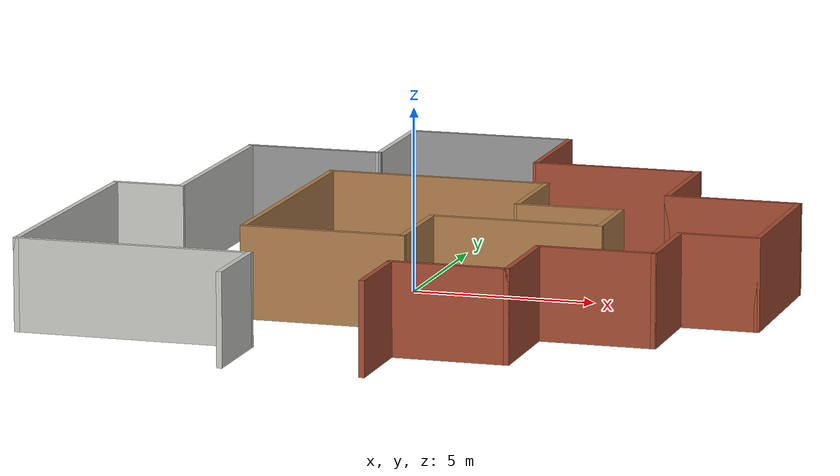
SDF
<?xml version='1.0'?>
<sdf version='1.6'>
  <model name='gazebo_course_3_hard'>
    <pose frame=''>0.742119 -0.304765 0 0 -0 0</pose>
    <link name='Wall_0'>
      <collision name='Wall_0_Collision'>
        <geometry>
          <box>
            <size>2.5 0.15 2.5</size>
          </box>
        </geometry>
        <pose frame=''>0 0 1.25 0 -0 0</pose>
      </collision>
      <visual name='Wall_0_Visual'>
        <pose frame=''>0 0 1.25 0 -0 0</pose>
        <geometry>
          <box>
            <size>2.5 0.15 2.5</size>
          </box>
        </geometry>
        <material>
          <script>
            <uri>file://media/materials/scripts/gazebo.material</uri>
            <name>Gazebo/CeilingTiled</name>
          </script>
          <ambient>1 1 1 1</ambient>
        </material>
        <meta>
          <layer>0</layer>
        </meta>
      </visual>
      <pose frame=''>-2.85212 -8.45023 0 0 -0 1.5708</pose>
    </link>
    <link name='Wall_1'>
      <collision name='Wall_1_Collision'>
        <geometry>
          <box>
            <size>6.5 0.15 2.5</size>
          </box>
        </geometry>
        <pose frame=''>0 0 1.25 0 -0 0</pose>
      </collision>
      <visual name='Wall_1_Visual'>
        <pose frame=''>0 0 1.25 0 -0 0</pose>
        <geometry>
          <box>
            <size>6.5 0.15 2.5</size>
          </box>
        </geometry>
        <material>
          <script>
            <uri>file://media/materials/scripts/gazebo.material</uri>
            <name>Gazebo/CeilingTiled</name>
          </script>
          <ambient>1 1 1 1</ambient>
        </material>
        <meta>
          <layer>0</layer>
        </meta>
      </visual>
      <pose frame=''>-6.02712 -7.27524 0 0 -0 3.14159</pose>
    </link>
    <link name='Wall_10'>
      <collision name='Wall_10_Collision'>
        <geometry>
          <box>
            <size>2.25 0.15 2.5</size>
          </box>
        </geometry>
        <pose frame=''>0 0 1.25 0 -0 0</pose>
      </collision>
      <visual name='Wall_10_Visual'>
        <pose frame=''>0 0 1.25 0 -0 0</pose>
        <geometry>
          <box>
            <size>2.25 0.15 2.5</size>
          </box>
        </geometry>
        <material>
          <script>
            <uri>file://media/materials/scripts/gazebo.material</uri>
            <name>Gazebo/Bricks</name>
          </script>
          <ambient>1 1 1 1</ambient>
        </material>
        <meta>
          <layer>0</layer>
        </meta>
      </visual>
      <pose frame=''>8.15255 -1.77532 0 0 -0 0</pose>
    </link>
    <link name='Wall_11'>
      <collision name='Wall_11_Collision'>
        <geometry>
          <box>
            <size>4.75 0.15 2.5</size>
          </box>
        </geometry>
        <pose frame=''>0 0 1.25 0 -0 0</pose>
      </collision>
      <visual name='Wall_11_Visual'>
        <pose frame=''>0 0 1.25 0 -0 0</pose>
        <geometry>
          <box>
            <size>4.75 0.15 2.5</size>
          </box>
        </geometry>
        <material>
          <script>
            <uri>file://media/materials/scripts/gazebo.material</uri>
            <name>Gazebo/Bricks</name>
          </script>
          <ambient>1 1 1 1</ambient>
        </material>
        <meta>
          <layer>0</layer>
        </meta>
      </visual>
      <pose frame=''>9.20255 0.524681 0 0 -0 1.5708</pose>
    </link>
    <link name='Wall_12'>
      <collision name='Wall_12_Collision'>
        <geometry>
          <box>
            <size>3.75 0.15 2.5</size>
          </box>
        </geometry>
        <pose frame=''>0 0 1.25 0 -0 0</pose>
      </collision>
      <visual name='Wall_12_Visual'>
        <pose frame=''>0 0 1.25 0 -0 0</pose>
        <geometry>
          <box>
            <size>3.75 0.15 2.5</size>
          </box>
        </geometry>
        <material>
          <script>
            <uri>file://media/materials/scripts/gazebo.material</uri>
            <name>Gazebo/Bricks</name>
          </script>
          <ambient>1 1 1 1</ambient>
        </material>
        <meta>
          <layer>0</layer>
        </meta>
      </visual>
      <pose frame=''>7.40255 2.82468 0 0 -0 3.14159</pose>
    </link>
    <link name='Wall_13'>
      <collision name='Wall_13_Collision'>
        <geometry>
          <box>
            <size>3.5 0.15 2.5</size>
          </box>
        </geometry>
        <pose frame=''>0 0 1.25 0 -0 0</pose>
      </collision>
      <visual name='Wall_13_Visual'>
        <pose frame=''>0 0 1.25 0 -0 0</pose>
        <geometry>
          <box>
            <size>3.5 0.15 2.5</size>
          </box>
        </geometry>
        <material>
          <script>
            <uri>file://media/materials/scripts/gazebo.material</uri>
            <name>Gazebo/Bricks</name>
          </script>
          <ambient>1 1 1 1</ambient>
        </material>
        <meta>
          <layer>0</layer>
        </meta>
      </visual>
      <pose frame=''>5.60255 4.49968 0 0 -0 1.5708</pose>
    </link>
    <link name='Wall_17'>
      <collision name='Wall_17_Collision'>
        <geometry>
          <box>
            <size>4.75 0.15 2.5</size>
          </box>
        </geometry>
        <pose frame=''>0 0 1.25 0 -0 0</pose>
      </collision>
      <visual name='Wall_17_Visual'>
        <pose frame=''>0 0 1.25 0 -0 0</pose>
        <geometry>
          <box>
            <size>4.75 0.15 2.5</size>
          </box>
        </geometry>
        <material>
          <script>
            <uri>file://media/materials/scripts/gazebo.material</uri>
            <name>Gazebo/Bricks</name>
          </script>
          <ambient>1 1 1 1</ambient>
        </material>
        <meta>
          <layer>0</layer>
        </meta>
      </visual>
      <pose frame=''>3.30255 6.17468 0 0 -0 3.14159</pose>
    </link>
    <link name='Wall_27'>
      <collision name='Wall_27_Collision'>
        <geometry>
          <box>
            <size>3.9 0.15 2.5</size>
          </box>
        </geometry>
        <pose frame=''>0 0 1.25 0 -0 0</pose>
      </collision>
      <visual name='Wall_27_Visual'>
        <pose frame=''>0 0 1.25 0 -0 0</pose>
        <geometry>
          <box>
            <size>3.9 0.15 2.5</size>
          </box>
        </geometry>
        <material>
          <script>
            <uri>file://media/materials/scripts/gazebo.material</uri>
            <name>Gazebo/Grey</name>
          </script>
          <ambient>1 1 1 1</ambient>
        </material>
        <meta>
          <layer>0</layer>
        </meta>
      </visual>
      <pose frame=''>-5.45312 6.28876 0 0 -0 0</pose>
    </link>
    <link name='Wall_30'>
      <collision name='Wall_30_Collision'>
        <geometry>
          <box>
            <size>3.48595 0.15 2.5</size>
          </box>
        </geometry>
        <pose frame=''>0 0 1.25 0 -0 0</pose>
      </collision>
      <visual name='Wall_30_Visual'>
        <pose frame=''>0 0 1.25 0 -0 0</pose>
        <geometry>
          <box>
            <size>3.48595 0.15 2.5</size>
          </box>
        </geometry>
        <material>
          <script>
            <uri>file://media/materials/scripts/gazebo.material</uri>
            <name>Gazebo/CeilingTiled</name>
          </script>
          <ambient>1 1 1 1</ambient>
        </material>
        <meta>
          <layer>0</layer>
        </meta>
      </visual>
      <pose frame=''>-3.59012 7.95676 0 0 -0 1.57799</pose>
    </link>
    <link name='Wall_31'>
      <collision name='Wall_31_Collision'>
        <geometry>
          <box>
            <size>4.75 0.15 2.5</size>
          </box>
        </geometry>
        <pose frame=''>0 0 1.25 0 -0 0</pose>
      </collision>
      <visual name='Wall_31_Visual'>
        <pose frame=''>0 0 1.25 0 -0 0</pose>
        <geometry>
          <box>
            <size>4.75 0.15 2.5</size>
          </box>
        </geometry>
        <material>
          <script>
            <uri>file://media/materials/scripts/gazebo.material</uri>
            <name>Gazebo/Grey</name>
          </script>
          <ambient>1 1 1 1</ambient>
        </material>
        <meta>
          <layer>0</layer>
        </meta>
      </visual>
      <pose frame=''>-1.30212 9.62477 0 0 -0 0</pose>
    </link>
    <link name='Wall_32'>
      <collision name='Wall_32_Collision'>
        <geometry>
          <box>
            <size>3.60009 0.15 2.5</size>
          </box>
        </geometry>
        <pose frame=''>0 0 1.25 0 -0 0</pose>
      </collision>
      <visual name='Wall_32_Visual'>
        <pose frame=''>0 0 1.25 0 -0 0</pose>
        <geometry>
          <box>
            <size>3.60009 0.15 2.5</size>
          </box>
        </geometry>
        <material>
          <script>
            <uri>file://media/materials/scripts/gazebo.material</uri>
            <name>Gazebo/Bricks</name>
          </script>
          <ambient>1 1 1 1</ambient>
        </material>
        <meta>
          <layer>0</layer>
        </meta>
      </visual>
      <pose frame=''>1.00022 7.89972 0 0 -0 -1.56944</pose>
    </link>
    <link name='Wall_35'>
      <collision name='Wall_35_Collision'>
        <geometry>
          <box>
            <size>7.75 0.15 2.5</size>
          </box>
        </geometry>
        <pose frame=''>0 0 1.25 0 -0 0</pose>
      </collision>
      <visual name='Wall_35_Visual'>
        <pose frame=''>0 0 1.25 0 -0 0</pose>
        <geometry>
          <box>
            <size>7.75 0.15 2.5</size>
          </box>
        </geometry>
        <material>
          <script>
            <uri>file://media/materials/scripts/gazebo.material</uri>
            <name>Gazebo/CeilingTiled</name>
          </script>
          <ambient>1 1 1 1</ambient>
        </material>
        <meta>
          <layer>0</layer>
        </meta>
      </visual>
      <pose frame=''>-9.20212 -3.47524 0 0 -0 1.5708</pose>
    </link>
    <link name='Wall_46'>
      <collision name='Wall_46_Collision'>
        <geometry>
          <box>
            <size>2.02213 0.15 2.5</size>
          </box>
        </geometry>
        <pose frame=''>0 0 1.25 0 -0 0</pose>
      </collision>
      <visual name='Wall_46_Visual'>
        <pose frame=''>0 0 1.25 0 -0 0</pose>
        <geometry>
          <box>
            <size>2.02213 0.15 2.5</size>
          </box>
        </geometry>
        <material>
          <script>
            <uri>file://media/materials/scripts/gazebo.material</uri>
            <name>Gazebo/CeilingTiled</name>
          </script>
          <ambient>1 1 1 1</ambient>
        </material>
        <meta>
          <layer>0</layer>
        </meta>
      </visual>
      <pose frame=''>-8.26624 0.327932 0 0 -0 0.003384</pose>
    </link>
    <link name='Wall_47'>
      <collision name='Wall_47_Collision'>
        <geometry>
          <box>
            <size>6 0.15 2.5</size>
          </box>
        </geometry>
        <pose frame=''>0 0 1.25 0 -0 0</pose>
      </collision>
      <visual name='Wall_47_Visual'>
        <pose frame=''>0 0 1.25 0 -0 0</pose>
        <geometry>
          <box>
            <size>6 0.15 2.5</size>
          </box>
        </geometry>
        <material>
          <script>
            <uri>file://media/materials/scripts/gazebo.material</uri>
            <name>Gazebo/CeilingTiled</name>
          </script>
          <ambient>1 1 1 1</ambient>
        </material>
        <meta>
          <layer>0</layer>
        </meta>
      </visual>
      <pose frame=''>-7.33036 3.25865 0 0 -0 1.5708</pose>
    </link>
    <link name='Wall_5'>
      <collision name='Wall_5_Collision'>
        <geometry>
          <box>
            <size>2.5 0.15 2.5</size>
          </box>
        </geometry>
        <pose frame=''>0 0 1.25 0 -0 0</pose>
      </collision>
      <visual name='Wall_5_Visual'>
        <pose frame=''>0 0 1.25 0 -0 0</pose>
        <geometry>
          <box>
            <size>2.5 0.15 2.5</size>
          </box>
        </geometry>
        <material>
          <script>
            <uri>file://media/materials/scripts/gazebo.material</uri>
            <name>Gazebo/Bricks</name>
          </script>
          <ambient>1 1 1 1</ambient>
        </material>
        <meta>
          <layer>0</layer>
        </meta>
      </visual>
      <pose frame=''>0.902548 -8.40032 0 0 -0 1.5708</pose>
    </link>
    <link name='Wall_54'>
      <collision name='Wall_54_Collision'>
        <geometry>
          <box>
            <size>6.25 0.15 2.5</size>
          </box>
        </geometry>
        <pose frame=''>0 0 1.25 0 -0 0</pose>
      </collision>
      <visual name='Wall_54_Visual'>
        <pose frame=''>0 0 1.25 0 -0 0</pose>
        <geometry>
          <box>
            <size>6.25 0.15 2.5</size>
          </box>
        </geometry>
        <material>
          <script>
            <uri>file://media/materials/scripts/gazebo.material</uri>
            <name>Gazebo/Wood</name>
          </script>
          <ambient>1 1 1 1</ambient>
        </material>
        <meta>
          <layer>0</layer>
        </meta>
      </visual>
      <pose frame=''>-1.01415 3.47448 0 0 -0 0</pose>
    </link>
    <link name='Wall_55'>
      <collision name='Wall_55_Collision'>
        <geometry>
          <box>
            <size>3 0.15 2.5</size>
          </box>
        </geometry>
        <pose frame=''>0 0 1.25 0 -0 0</pose>
      </collision>
      <visual name='Wall_55_Visual'>
        <pose frame=''>0 0 1.25 0 -0 0</pose>
        <geometry>
          <box>
            <size>3 0.15 2.5</size>
          </box>
        </geometry>
        <material>
          <script>
            <uri>file://media/materials/scripts/gazebo.material</uri>
            <name>Gazebo/Wood</name>
          </script>
          <ambient>1 1 1 1</ambient>
        </material>
        <meta>
          <layer>0</layer>
        </meta>
      </visual>
      <pose frame=''>2.03585 2.04948 0 0 -0 -1.5708</pose>
    </link>
    <link name='Wall_56'>
      <collision name='Wall_56_Collision'>
        <geometry>
          <box>
            <size>3 0.15 2.5</size>
          </box>
        </geometry>
        <pose frame=''>0 0 1.25 0 -0 0</pose>
      </collision>
      <visual name='Wall_56_Visual'>
        <pose frame=''>0 0 1.25 0 -0 0</pose>
        <geometry>
          <box>
            <size>3 0.15 2.5</size>
          </box>
        </geometry>
        <material>
          <script>
            <uri>file://media/materials/scripts/gazebo.material</uri>
            <name>Gazebo/Wood</name>
          </script>
          <ambient>1 1 1 1</ambient>
        </material>
        <meta>
          <layer>0</layer>
        </meta>
      </visual>
      <pose frame=''>3.46085 0.624483 0 0 -0 0</pose>
    </link>
    <link name='Wall_57'>
      <collision name='Wall_57_Collision'>
        <geometry>
          <box>
            <size>2.25 0.15 2.5</size>
          </box>
        </geometry>
        <pose frame=''>0 0 1.25 0 -0 0</pose>
      </collision>
      <visual name='Wall_57_Visual'>
        <pose frame=''>0 0 1.25 0 -0 0</pose>
        <geometry>
          <box>
            <size>2.25 0.15 2.5</size>
          </box>
        </geometry>
        <material>
          <script>
            <uri>file://media/materials/scripts/gazebo.material</uri>
            <name>Gazebo/Wood</name>
          </script>
          <ambient>1 1 1 1</ambient>
        </material>
        <meta>
          <layer>0</layer>
        </meta>
      </visual>
      <pose frame=''>4.88585 -0.425517 0 0 -0 -1.5708</pose>
    </link>
    <link name='Wall_6'>
      <collision name='Wall_6_Collision'>
        <geometry>
          <box>
            <size>3.25 0.15 2.5</size>
          </box>
        </geometry>
        <pose frame=''>0 0 1.25 0 -0 0</pose>
      </collision>
      <visual name='Wall_6_Visual'>
        <pose frame=''>0 0 1.25 0 -0 0</pose>
        <geometry>
          <box>
            <size>3.25 0.15 2.5</size>
          </box>
        </geometry>
        <material>
          <script>
            <uri>file://media/materials/scripts/gazebo.material</uri>
            <name>Gazebo/Bricks</name>
          </script>
          <ambient>1 1 1 1</ambient>
        </material>
        <meta>
          <layer>0</layer>
        </meta>
      </visual>
      <pose frame=''>2.45255 -7.22532 0 0 -0 0</pose>
    </link>
    <link name='Wall_60'>
      <collision name='Wall_60_Collision'>
        <geometry>
          <box>
            <size>4.75 0.15 2.5</size>
          </box>
        </geometry>
        <pose frame=''>0 0 1.25 0 -0 0</pose>
      </collision>
      <visual name='Wall_60_Visual'>
        <pose frame=''>0 0 1.25 0 -0 0</pose>
        <geometry>
          <box>
            <size>4.75 0.15 2.5</size>
          </box>
        </geometry>
        <material>
          <script>
            <uri>file://media/materials/scripts/gazebo.material</uri>
            <name>Gazebo/Wood</name>
          </script>
          <ambient>1 1 1 1</ambient>
        </material>
        <meta>
          <layer>0</layer>
        </meta>
      </visual>
      <pose frame=''>2.58585 -1.47552 0 0 -0 3.14159</pose>
    </link>
    <link name='Wall_61'>
      <collision name='Wall_61_Collision'>
        <geometry>
          <box>
            <size>2.75 0.15 2.5</size>
          </box>
        </geometry>
        <pose frame=''>0 0 1.25 0 -0 0</pose>
      </collision>
      <visual name='Wall_61_Visual'>
        <pose frame=''>0 0 1.25 0 -0 0</pose>
        <geometry>
          <box>
            <size>2.75 0.15 2.5</size>
          </box>
        </geometry>
        <material>
          <script>
            <uri>file://media/materials/scripts/gazebo.material</uri>
            <name>Gazebo/Wood</name>
          </script>
          <ambient>1 1 1 1</ambient>
        </material>
        <meta>
          <layer>0</layer>
        </meta>
      </visual>
      <pose frame=''>0.285847 -2.77552 0 0 -0 -1.5708</pose>
    </link>
    <link name='Wall_64'>
      <collision name='Wall_64_Collision'>
        <geometry>
          <box>
            <size>7.75 0.15 2.5</size>
          </box>
        </geometry>
        <pose frame=''>0 0 1.25 0 -0 0</pose>
      </collision>
      <visual name='Wall_64_Visual'>
        <pose frame=''>0 0 1.25 0 -0 0</pose>
        <geometry>
          <box>
            <size>7.75 0.15 2.5</size>
          </box>
        </geometry>
        <material>
          <script>
            <uri>file://media/materials/scripts/gazebo.material</uri>
            <name>Gazebo/Wood</name>
          </script>
          <ambient>1 1 1 1</ambient>
        </material>
        <meta>
          <layer>0</layer>
        </meta>
      </visual>
      <pose frame=''>-4.06415 -0.325517 0 0 -0 -1.5708</pose>
    </link>
    <link name='Wall_65'>
      <collision name='Wall_65_Collision'>
        <geometry>
          <box>
            <size>4.5 0.15 2.5</size>
          </box>
        </geometry>
        <pose frame=''>0 0 1.25 0 -0 0</pose>
      </collision>
      <visual name='Wall_65_Visual'>
        <pose frame=''>0 0 1.25 0 -0 0</pose>
        <geometry>
          <box>
            <size>4.5 0.15 2.5</size>
          </box>
        </geometry>
        <material>
          <script>
            <uri>file://media/materials/scripts/gazebo.material</uri>
            <name>Gazebo/Wood</name>
          </script>
          <ambient>1 1 1 1</ambient>
        </material>
        <meta>
          <layer>0</layer>
        </meta>
      </visual>
      <pose frame=''>-1.88915 -4.12552 0 0 -0 0</pose>
    </link>
    <link name='Wall_7'>
      <collision name='Wall_7_Collision'>
        <geometry>
          <box>
            <size>3 0.15 2.5</size>
          </box>
        </geometry>
        <pose frame=''>0 0 1.25 0 -0 0</pose>
      </collision>
      <visual name='Wall_7_Visual'>
        <pose frame=''>0 0 1.25 0 -0 0</pose>
        <geometry>
          <box>
            <size>3 0.15 2.5</size>
          </box>
        </geometry>
        <material>
          <script>
            <uri>file://media/materials/scripts/gazebo.material</uri>
            <name>Gazebo/Bricks</name>
          </script>
          <ambient>1 1 1 1</ambient>
        </material>
        <meta>
          <layer>0</layer>
        </meta>
      </visual>
      <pose frame=''>4.00255 -5.80032 0 0 -0 1.5708</pose>
    </link>
    <link name='Wall_8'>
      <collision name='Wall_8_Collision'>
        <geometry>
          <box>
            <size>3.25 0.15 2.5</size>
          </box>
        </geometry>
        <pose frame=''>0 0 1.25 0 -0 0</pose>
      </collision>
      <visual name='Wall_8_Visual'>
        <pose frame=''>0 0 1.25 0 -0 0</pose>
        <geometry>
          <box>
            <size>3.25 0.15 2.5</size>
          </box>
        </geometry>
        <material>
          <script>
            <uri>file://media/materials/scripts/gazebo.material</uri>
            <name>Gazebo/Bricks</name>
          </script>
          <ambient>1 1 1 1</ambient>
        </material>
        <meta>
          <layer>0</layer>
        </meta>
      </visual>
      <pose frame=''>5.55255 -4.37532 0 0 -0 0</pose>
    </link>
    <link name='Wall_9'>
      <collision name='Wall_9_Collision'>
        <geometry>
          <box>
            <size>2.75 0.15 2.5</size>
          </box>
        </geometry>
        <pose frame=''>0 0 1.25 0 -0 0</pose>
      </collision>
      <visual name='Wall_9_Visual'>
        <pose frame=''>0 0 1.25 0 -0 0</pose>
        <geometry>
          <box>
            <size>2.75 0.15 2.5</size>
          </box>
        </geometry>
        <material>
          <script>
            <uri>file://media/materials/scripts/gazebo.material</uri>
            <name>Gazebo/Bricks</name>
          </script>
          <ambient>1 1 1 1</ambient>
        </material>
        <meta>
          <layer>0</layer>
        </meta>
      </visual>
      <pose frame=''>7.10255 -3.07532 0 0 -0 1.5708</pose>
    </link>
    <static>1</static>
  </model>
</sdf>
